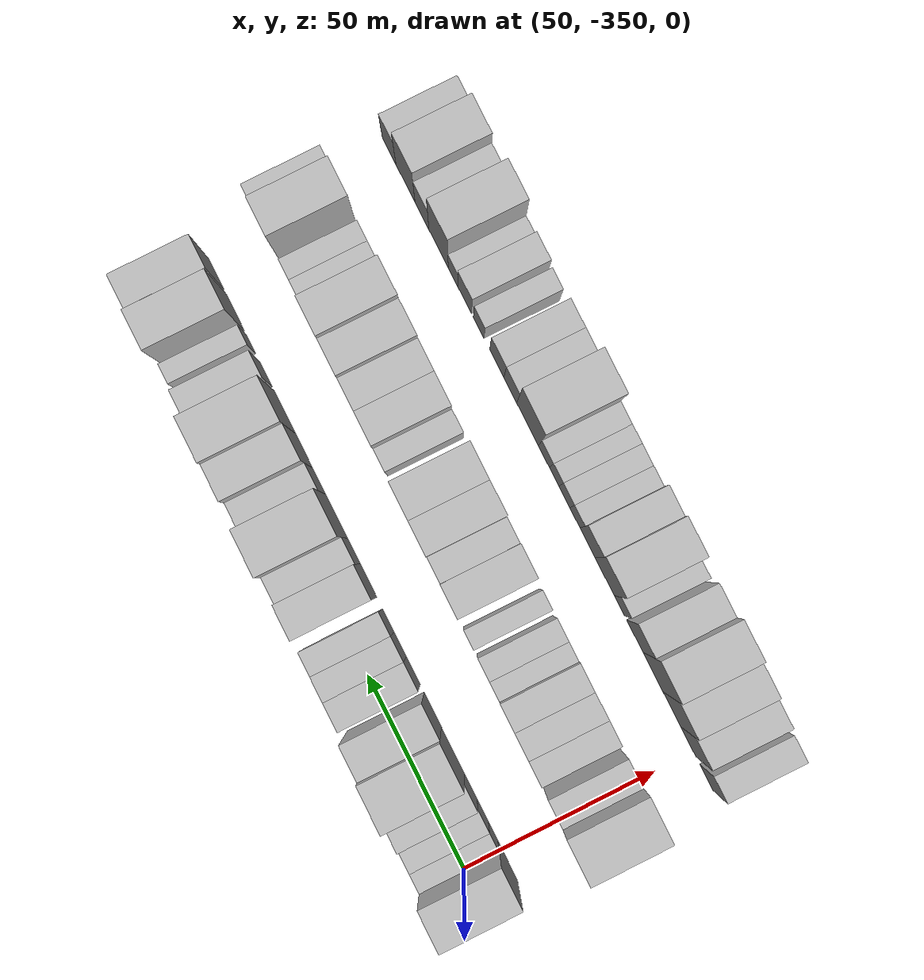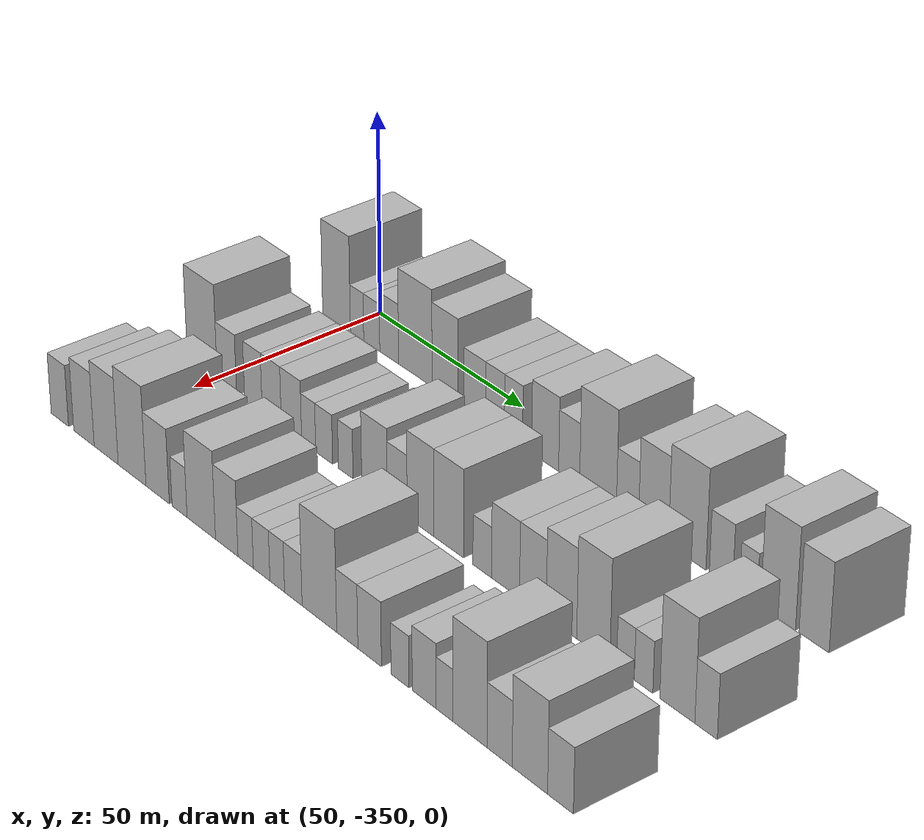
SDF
<sdf version="1.6">
 <world name="default">
  <model name="building_1">
   <static>1</static>
   <pose>50.0000 -352.8686 0 0.000000 0.000000 0.000000</pose>
   <link name="link">
    <pose>0 0 12.00 0 0 0</pose>
    <collision name="collision"><geometry><box><size>20.0000 10.2628 24.0000</size></box></geometry></collision>
    <visual name="visual">
     <cast_shadows>0</cast_shadows>
     <geometry><box><size>20.0000 10.2628 24.0000</size></box></geometry>
     <material>
      <script>
       <uri>model://HANNAS_wall/materials/scripts</uri>
       <uri>model://HANNAS_wall/materials/textures</uri>
       <name>vrc/HANNAS_wall</name>
      </script>
     </material>
    </visual>
   </link>
  </model>
  <model name="building_2">
   <static>1</static>
   <pose>50.0000 -345.3248 0 0.000000 0.000000 0.000000</pose>
   <link name="link">
    <pose>0 0 6.00 0 0 0</pose>
    <collision name="collision"><geometry><box><size>20.0000 4.8248 12.0000</size></box></geometry></collision>
    <visual name="visual">
     <cast_shadows>0</cast_shadows>
     <geometry><box><size>20.0000 4.8248 12.0000</size></box></geometry>
     <material>
      <script>
       <uri>model://HANNAS_wall/materials/scripts</uri>
       <uri>model://HANNAS_wall/materials/textures</uri>
       <name>vrc/HANNAS_wall</name>
      </script>
     </material>
    </visual>
   </link>
  </model>
  <model name="building_3">
   <static>1</static>
   <pose>50.0000 -339.9929 0 0.000000 0.000000 0.000000</pose>
   <link name="link">
    <pose>0 0 6.00 0 0 0</pose>
    <collision name="collision"><geometry><box><size>20.0000 5.8389 12.0000</size></box></geometry></collision>
    <visual name="visual">
     <cast_shadows>0</cast_shadows>
     <geometry><box><size>20.0000 5.8389 12.0000</size></box></geometry>
     <material>
      <script>
       <uri>model://HANNAS_wall/materials/scripts</uri>
       <uri>model://HANNAS_wall/materials/textures</uri>
       <name>vrc/HANNAS_wall</name>
      </script>
     </material>
    </visual>
   </link>
  </model>
  <model name="building_4">
   <static>1</static>
   <pose>50.0000 -333.7014 0 0.000000 0.000000 0.000000</pose>
   <link name="link">
    <pose>0 0 7.50 0 0 0</pose>
    <collision name="collision"><geometry><box><size>20.0000 6.7441 15.0000</size></box></geometry></collision>
    <visual name="visual">
     <cast_shadows>0</cast_shadows>
     <geometry><box><size>20.0000 6.7441 15.0000</size></box></geometry>
     <material>
      <script>
       <uri>model://HANNAS_wall/materials/scripts</uri>
       <uri>model://HANNAS_wall/materials/textures</uri>
       <name>vrc/HANNAS_wall</name>
      </script>
     </material>
    </visual>
   </link>
  </model>
  <model name="building_5">
   <static>1</static>
   <pose>50.0000 -324.4189 0 0.000000 0.000000 0.000000</pose>
   <link name="link">
    <pose>0 0 12.00 0 0 0</pose>
    <collision name="collision"><geometry><box><size>20.0000 11.8209 24.0000</size></box></geometry></collision>
    <visual name="visual">
     <cast_shadows>0</cast_shadows>
     <geometry><box><size>20.0000 11.8209 24.0000</size></box></geometry>
     <material>
      <script>
       <uri>model://HANNAS_wall/materials/scripts</uri>
       <uri>model://HANNAS_wall/materials/textures</uri>
       <name>vrc/HANNAS_wall</name>
      </script>
     </material>
    </visual>
   </link>
  </model>
  <model name="building_6">
   <static>1</static>
   <pose>50.0000 -314.0192 0 0.000000 0.000000 0.000000</pose>
   <link name="link">
    <pose>0 0 10.50 0 0 0</pose>
    <collision name="collision"><geometry><box><size>20.0000 8.9787 21.0000</size></box></geometry></collision>
    <visual name="visual">
     <cast_shadows>0</cast_shadows>
     <geometry><box><size>20.0000 8.9787 21.0000</size></box></geometry>
     <material>
      <script>
       <uri>model://HANNAS_wall/materials/scripts</uri>
       <uri>model://HANNAS_wall/materials/textures</uri>
       <name>vrc/HANNAS_wall</name>
      </script>
     </material>
    </visual>
   </link>
  </model>
  <model name="building_7">
   <static>1</static>
   <pose>50.0000 -303.8690 0 0.000000 0.000000 0.000000</pose>
   <link name="link">
    <pose>0 0 7.50 0 0 0</pose>
    <collision name="collision"><geometry><box><size>20.0000 7.3216 15.0000</size></box></geometry></collision>
    <visual name="visual">
     <cast_shadows>0</cast_shadows>
     <geometry><box><size>20.0000 7.3216 15.0000</size></box></geometry>
     <material>
      <script>
       <uri>model://HANNAS_wall/materials/scripts</uri>
       <uri>model://HANNAS_wall/materials/textures</uri>
       <name>vrc/HANNAS_wall</name>
      </script>
     </material>
    </visual>
   </link>
  </model>
  <model name="building_8">
   <static>1</static>
   <pose>50.0000 -297.0208 0 0.000000 0.000000 0.000000</pose>
   <link name="link">
    <pose>0 0 7.50 0 0 0</pose>
    <collision name="collision"><geometry><box><size>20.0000 6.3748 15.0000</size></box></geometry></collision>
    <visual name="visual">
     <cast_shadows>0</cast_shadows>
     <geometry><box><size>20.0000 6.3748 15.0000</size></box></geometry>
     <material>
      <script>
       <uri>model://HANNAS_wall/materials/scripts</uri>
       <uri>model://HANNAS_wall/materials/textures</uri>
       <name>vrc/HANNAS_wall</name>
      </script>
     </material>
    </visual>
   </link>
  </model>
  <model name="building_9">
   <static>1</static>
   <pose>50.0000 -290.8084 0 0.000000 0.000000 0.000000</pose>
   <link name="link">
    <pose>0 0 7.50 0 0 0</pose>
    <collision name="collision"><geometry><box><size>20.0000 6.0501 15.0000</size></box></geometry></collision>
    <visual name="visual">
     <cast_shadows>0</cast_shadows>
     <geometry><box><size>20.0000 6.0501 15.0000</size></box></geometry>
     <material>
      <script>
       <uri>model://HANNAS_wall/materials/scripts</uri>
       <uri>model://HANNAS_wall/materials/textures</uri>
       <name>vrc/HANNAS_wall</name>
      </script>
     </material>
    </visual>
   </link>
  </model>
  <model name="building_10">
   <static>1</static>
   <pose>50.0000 -280.3796 0 0.000000 0.000000 0.000000</pose>
   <link name="link">
    <pose>0 0 9.00 0 0 0</pose>
    <collision name="collision"><geometry><box><size>20.0000 8.8075 18.0000</size></box></geometry></collision>
    <visual name="visual">
     <cast_shadows>0</cast_shadows>
     <geometry><box><size>20.0000 8.8075 18.0000</size></box></geometry>
     <material>
      <script>
       <uri>model://HANNAS_wall/materials/scripts</uri>
       <uri>model://HANNAS_wall/materials/textures</uri>
       <name>vrc/HANNAS_wall</name>
      </script>
     </material>
    </visual>
   </link>
  </model>
  <model name="building_11">
   <static>1</static>
   <pose>50.0000 -272.6070 0 0.000000 0.000000 0.000000</pose>
   <link name="link">
    <pose>0 0 7.50 0 0 0</pose>
    <collision name="collision"><geometry><box><size>20.0000 6.7378 15.0000</size></box></geometry></collision>
    <visual name="visual">
     <cast_shadows>0</cast_shadows>
     <geometry><box><size>20.0000 6.7378 15.0000</size></box></geometry>
     <material>
      <script>
       <uri>model://HANNAS_wall/materials/scripts</uri>
       <uri>model://HANNAS_wall/materials/textures</uri>
       <name>vrc/HANNAS_wall</name>
      </script>
     </material>
    </visual>
   </link>
  </model>
  <model name="building_12">
   <static>1</static>
   <pose>50.0000 -263.4218 0 0.000000 0.000000 0.000000</pose>
   <link name="link">
    <pose>0 0 12.00 0 0 0</pose>
    <collision name="collision"><geometry><box><size>20.0000 11.6326 24.0000</size></box></geometry></collision>
    <visual name="visual">
     <cast_shadows>0</cast_shadows>
     <geometry><box><size>20.0000 11.6326 24.0000</size></box></geometry>
     <material>
      <script>
       <uri>model://HANNAS_wall/materials/scripts</uri>
       <uri>model://HANNAS_wall/materials/textures</uri>
       <name>vrc/HANNAS_wall</name>
      </script>
     </material>
    </visual>
   </link>
  </model>
  <model name="building_13">
   <static>1</static>
   <pose>50.0000 -254.1615 0 0.000000 0.000000 0.000000</pose>
   <link name="link">
    <pose>0 0 7.50 0 0 0</pose>
    <collision name="collision"><geometry><box><size>20.0000 6.8879 15.0000</size></box></geometry></collision>
    <visual name="visual">
     <cast_shadows>0</cast_shadows>
     <geometry><box><size>20.0000 6.8879 15.0000</size></box></geometry>
     <material>
      <script>
       <uri>model://HANNAS_wall/materials/scripts</uri>
       <uri>model://HANNAS_wall/materials/textures</uri>
       <name>vrc/HANNAS_wall</name>
      </script>
     </material>
    </visual>
   </link>
  </model>
  <model name="building_14">
   <static>1</static>
   <pose>50.0000 -246.1283 0 0.000000 0.000000 0.000000</pose>
   <link name="link">
    <pose>0 0 10.50 0 0 0</pose>
    <collision name="collision"><geometry><box><size>20.0000 9.1787 21.0000</size></box></geometry></collision>
    <visual name="visual">
     <cast_shadows>0</cast_shadows>
     <geometry><box><size>20.0000 9.1787 21.0000</size></box></geometry>
     <material>
      <script>
       <uri>model://HANNAS_wall/materials/scripts</uri>
       <uri>model://HANNAS_wall/materials/textures</uri>
       <name>vrc/HANNAS_wall</name>
      </script>
     </material>
    </visual>
   </link>
  </model>
  <model name="building_15">
   <static>1</static>
   <pose>50.0000 -235.8832 0 0.000000 0.000000 0.000000</pose>
   <link name="link">
    <pose>0 0 12.00 0 0 0</pose>
    <collision name="collision"><geometry><box><size>20.0000 11.3115 24.0000</size></box></geometry></collision>
    <visual name="visual">
     <cast_shadows>0</cast_shadows>
     <geometry><box><size>20.0000 11.3115 24.0000</size></box></geometry>
     <material>
      <script>
       <uri>model://HANNAS_wall/materials/scripts</uri>
       <uri>model://HANNAS_wall/materials/textures</uri>
       <name>vrc/HANNAS_wall</name>
      </script>
     </material>
    </visual>
   </link>
  </model>
  <model name="building_16">
   <static>1</static>
   <pose>50.0000 -225.7912 0 0.000000 0.000000 0.000000</pose>
   <link name="link">
    <pose>0 0 7.50 0 0 0</pose>
    <collision name="collision"><geometry><box><size>20.0000 6.8725 15.0000</size></box></geometry></collision>
    <visual name="visual">
     <cast_shadows>0</cast_shadows>
     <geometry><box><size>20.0000 6.8725 15.0000</size></box></geometry>
     <material>
      <script>
       <uri>model://HANNAS_wall/materials/scripts</uri>
       <uri>model://HANNAS_wall/materials/textures</uri>
       <name>vrc/HANNAS_wall</name>
      </script>
     </material>
    </visual>
   </link>
  </model>
  <model name="building_17">
   <static>1</static>
   <pose>50.0000 -217.7976 0 0.000000 0.000000 0.000000</pose>
   <link name="link">
    <pose>0 0 6.00 0 0 0</pose>
    <collision name="collision"><geometry><box><size>20.0000 5.1148 12.0000</size></box></geometry></collision>
    <visual name="visual">
     <cast_shadows>0</cast_shadows>
     <geometry><box><size>20.0000 5.1148 12.0000</size></box></geometry>
     <material>
      <script>
       <uri>model://HANNAS_wall/materials/scripts</uri>
       <uri>model://HANNAS_wall/materials/textures</uri>
       <name>vrc/HANNAS_wall</name>
      </script>
     </material>
    </visual>
   </link>
  </model>
  <model name="building_18">
   <static>1</static>
   <pose>50.0000 -209.2322 0 0.000000 0.000000 0.000000</pose>
   <link name="link">
    <pose>0 0 12.00 0 0 0</pose>
    <collision name="collision"><geometry><box><size>20.0000 10.0159 24.0000</size></box></geometry></collision>
    <visual name="visual">
     <cast_shadows>0</cast_shadows>
     <geometry><box><size>20.0000 10.0159 24.0000</size></box></geometry>
     <material>
      <script>
       <uri>model://HANNAS_wall/materials/scripts</uri>
       <uri>model://HANNAS_wall/materials/textures</uri>
       <name>vrc/HANNAS_wall</name>
      </script>
     </material>
    </visual>
   </link>
  </model>
  <model name="building_19">
   <static>1</static>
   <pose>50.0000 -199.0044 0 0.000000 0.000000 0.000000</pose>
   <link name="link">
    <pose>0 0 10.50 0 0 0</pose>
    <collision name="collision"><geometry><box><size>20.0000 8.4398 21.0000</size></box></geometry></collision>
    <visual name="visual">
     <cast_shadows>0</cast_shadows>
     <geometry><box><size>20.0000 8.4398 21.0000</size></box></geometry>
     <material>
      <script>
       <uri>model://HANNAS_wall/materials/scripts</uri>
       <uri>model://HANNAS_wall/materials/textures</uri>
       <name>vrc/HANNAS_wall</name>
      </script>
     </material>
    </visual>
   </link>
  </model>
  <model name="building_82">
   <static>1</static>
   <pose>85.0000 -354.3574 0 0.000000 0.000000 0.000000</pose>
   <link name="link">
    <pose>0 0 12.00 0 0 0</pose>
    <collision name="collision"><geometry><box><size>20.0000 11.2853 24.0000</size></box></geometry></collision>
    <visual name="visual">
     <cast_shadows>0</cast_shadows>
     <geometry><box><size>20.0000 11.2853 24.0000</size></box></geometry>
     <material>
      <script>
       <uri>model://HANNAS_wall/materials/scripts</uri>
       <uri>model://HANNAS_wall/materials/textures</uri>
       <name>vrc/HANNAS_wall</name>
      </script>
     </material>
    </visual>
   </link>
  </model>
  <model name="building_83">
   <static>1</static>
   <pose>85.0000 -345.1376 0 0.000000 0.000000 0.000000</pose>
   <link name="link">
    <pose>0 0 7.50 0 0 0</pose>
    <collision name="collision"><geometry><box><size>20.0000 7.1543 15.0000</size></box></geometry></collision>
    <visual name="visual">
     <cast_shadows>0</cast_shadows>
     <geometry><box><size>20.0000 7.1543 15.0000</size></box></geometry>
     <material>
      <script>
       <uri>model://HANNAS_wall/materials/scripts</uri>
       <uri>model://HANNAS_wall/materials/textures</uri>
       <name>vrc/HANNAS_wall</name>
      </script>
     </material>
    </visual>
   </link>
  </model>
  <model name="building_84">
   <static>1</static>
   <pose>85.0000 -335.3608 0 0.000000 0.000000 0.000000</pose>
   <link name="link">
    <pose>0 0 7.50 0 0 0</pose>
    <collision name="collision"><geometry><box><size>20.0000 6.3992 15.0000</size></box></geometry></collision>
    <visual name="visual">
     <cast_shadows>0</cast_shadows>
     <geometry><box><size>20.0000 6.3992 15.0000</size></box></geometry>
     <material>
      <script>
       <uri>model://HANNAS_wall/materials/scripts</uri>
       <uri>model://HANNAS_wall/materials/textures</uri>
       <name>vrc/HANNAS_wall</name>
      </script>
     </material>
    </visual>
   </link>
  </model>
  <model name="building_85">
   <static>1</static>
   <pose>85.0000 -328.6858 0 0.000000 0.000000 0.000000</pose>
   <link name="link">
    <pose>0 0 7.50 0 0 0</pose>
    <collision name="collision"><geometry><box><size>20.0000 6.9506 15.0000</size></box></geometry></collision>
    <visual name="visual">
     <cast_shadows>0</cast_shadows>
     <geometry><box><size>20.0000 6.9506 15.0000</size></box></geometry>
     <material>
      <script>
       <uri>model://HANNAS_wall/materials/scripts</uri>
       <uri>model://HANNAS_wall/materials/textures</uri>
       <name>vrc/HANNAS_wall</name>
      </script>
     </material>
    </visual>
   </link>
  </model>
  <model name="building_86">
   <static>1</static>
   <pose>85.0000 -321.5972 0 0.000000 0.000000 0.000000</pose>
   <link name="link">
    <pose>0 0 7.50 0 0 0</pose>
    <collision name="collision"><geometry><box><size>20.0000 7.2266 15.0000</size></box></geometry></collision>
    <visual name="visual">
     <cast_shadows>0</cast_shadows>
     <geometry><box><size>20.0000 7.2266 15.0000</size></box></geometry>
     <material>
      <script>
       <uri>model://HANNAS_wall/materials/scripts</uri>
       <uri>model://HANNAS_wall/materials/textures</uri>
       <name>vrc/HANNAS_wall</name>
      </script>
     </material>
    </visual>
   </link>
  </model>
  <model name="building_87">
   <static>1</static>
   <pose>85.0000 -315.5026 0 0.000000 0.000000 0.000000</pose>
   <link name="link">
    <pose>0 0 6.00 0 0 0</pose>
    <collision name="collision"><geometry><box><size>20.0000 4.9626 12.0000</size></box></geometry></collision>
    <visual name="visual">
     <cast_shadows>0</cast_shadows>
     <geometry><box><size>20.0000 4.9626 12.0000</size></box></geometry>
     <material>
      <script>
       <uri>model://HANNAS_wall/materials/scripts</uri>
       <uri>model://HANNAS_wall/materials/textures</uri>
       <name>vrc/HANNAS_wall</name>
      </script>
     </material>
    </visual>
   </link>
  </model>
  <model name="building_88">
   <static>1</static>
   <pose>85.0000 -310.0579 0 0.000000 0.000000 0.000000</pose>
   <link name="link">
    <pose>0 0 6.00 0 0 0</pose>
    <collision name="collision"><geometry><box><size>20.0000 5.9268 12.0000</size></box></geometry></collision>
    <visual name="visual">
     <cast_shadows>0</cast_shadows>
     <geometry><box><size>20.0000 5.9268 12.0000</size></box></geometry>
     <material>
      <script>
       <uri>model://HANNAS_wall/materials/scripts</uri>
       <uri>model://HANNAS_wall/materials/textures</uri>
       <name>vrc/HANNAS_wall</name>
      </script>
     </material>
    </visual>
   </link>
  </model>
  <model name="building_89">
   <static>1</static>
   <pose>85.0000 -302.5815 0 0.000000 0.000000 0.000000</pose>
   <link name="link">
    <pose>0 0 6.00 0 0 0</pose>
    <collision name="collision"><geometry><box><size>20.0000 5.0261 12.0000</size></box></geometry></collision>
    <visual name="visual">
     <cast_shadows>0</cast_shadows>
     <geometry><box><size>20.0000 5.0261 12.0000</size></box></geometry>
     <material>
      <script>
       <uri>model://HANNAS_wall/materials/scripts</uri>
       <uri>model://HANNAS_wall/materials/textures</uri>
       <name>vrc/HANNAS_wall</name>
      </script>
     </material>
    </visual>
   </link>
  </model>
  <model name="building_90">
   <static>1</static>
   <pose>85.0000 -292.7428 0 0.000000 0.000000 0.000000</pose>
   <link name="link">
    <pose>0 0 9.00 0 0 0</pose>
    <collision name="collision"><geometry><box><size>20.0000 8.6512 18.0000</size></box></geometry></collision>
    <visual name="visual">
     <cast_shadows>0</cast_shadows>
     <geometry><box><size>20.0000 8.6512 18.0000</size></box></geometry>
     <material>
      <script>
       <uri>model://HANNAS_wall/materials/scripts</uri>
       <uri>model://HANNAS_wall/materials/textures</uri>
       <name>vrc/HANNAS_wall</name>
      </script>
     </material>
    </visual>
   </link>
  </model>
  <model name="building_91">
   <static>1</static>
   <pose>85.0000 -285.0818 0 0.000000 0.000000 0.000000</pose>
   <link name="link">
    <pose>0 0 7.50 0 0 0</pose>
    <collision name="collision"><geometry><box><size>20.0000 6.6709 15.0000</size></box></geometry></collision>
    <visual name="visual">
     <cast_shadows>0</cast_shadows>
     <geometry><box><size>20.0000 6.6709 15.0000</size></box></geometry>
     <material>
      <script>
       <uri>model://HANNAS_wall/materials/scripts</uri>
       <uri>model://HANNAS_wall/materials/textures</uri>
       <name>vrc/HANNAS_wall</name>
      </script>
     </material>
    </visual>
   </link>
  </model>
  <model name="building_92">
   <static>1</static>
   <pose>85.0000 -277.3426 0 0.000000 0.000000 0.000000</pose>
   <link name="link">
    <pose>0 0 10.50 0 0 0</pose>
    <collision name="collision"><geometry><box><size>20.0000 8.8077 21.0000</size></box></geometry></collision>
    <visual name="visual">
     <cast_shadows>0</cast_shadows>
     <geometry><box><size>20.0000 8.8077 21.0000</size></box></geometry>
     <material>
      <script>
       <uri>model://HANNAS_wall/materials/scripts</uri>
       <uri>model://HANNAS_wall/materials/textures</uri>
       <name>vrc/HANNAS_wall</name>
      </script>
     </material>
    </visual>
   </link>
  </model>
  <model name="building_93">
   <static>1</static>
   <pose>85.0000 -268.1511 0 0.000000 0.000000 0.000000</pose>
   <link name="link">
    <pose>0 0 10.50 0 0 0</pose>
    <collision name="collision"><geometry><box><size>20.0000 9.5753 21.0000</size></box></geometry></collision>
    <visual name="visual">
     <cast_shadows>0</cast_shadows>
     <geometry><box><size>20.0000 9.5753 21.0000</size></box></geometry>
     <material>
      <script>
       <uri>model://HANNAS_wall/materials/scripts</uri>
       <uri>model://HANNAS_wall/materials/textures</uri>
       <name>vrc/HANNAS_wall</name>
      </script>
     </material>
    </visual>
   </link>
  </model>
  <model name="building_94">
   <static>1</static>
   <pose>85.0000 -257.3862 0 0.000000 0.000000 0.000000</pose>
   <link name="link">
    <pose>0 0 6.00 0 0 0</pose>
    <collision name="collision"><geometry><box><size>20.0000 5.9543 12.0000</size></box></geometry></collision>
    <visual name="visual">
     <cast_shadows>0</cast_shadows>
     <geometry><box><size>20.0000 5.9543 12.0000</size></box></geometry>
     <material>
      <script>
       <uri>model://HANNAS_wall/materials/scripts</uri>
       <uri>model://HANNAS_wall/materials/textures</uri>
       <name>vrc/HANNAS_wall</name>
      </script>
     </material>
    </visual>
   </link>
  </model>
  <model name="building_95">
   <static>1</static>
   <pose>85.0000 -250.0476 0 0.000000 0.000000 0.000000</pose>
   <link name="link">
    <pose>0 0 9.00 0 0 0</pose>
    <collision name="collision"><geometry><box><size>20.0000 8.7229 18.0000</size></box></geometry></collision>
    <visual name="visual">
     <cast_shadows>0</cast_shadows>
     <geometry><box><size>20.0000 8.7229 18.0000</size></box></geometry>
     <material>
      <script>
       <uri>model://HANNAS_wall/materials/scripts</uri>
       <uri>model://HANNAS_wall/materials/textures</uri>
       <name>vrc/HANNAS_wall</name>
      </script>
     </material>
    </visual>
   </link>
  </model>
  <model name="building_96">
   <static>1</static>
   <pose>85.0000 -241.5769 0 0.000000 0.000000 0.000000</pose>
   <link name="link">
    <pose>0 0 9.00 0 0 0</pose>
    <collision name="collision"><geometry><box><size>20.0000 8.2185 18.0000</size></box></geometry></collision>
    <visual name="visual">
     <cast_shadows>0</cast_shadows>
     <geometry><box><size>20.0000 8.2185 18.0000</size></box></geometry>
     <material>
      <script>
       <uri>model://HANNAS_wall/materials/scripts</uri>
       <uri>model://HANNAS_wall/materials/textures</uri>
       <name>vrc/HANNAS_wall</name>
      </script>
     </material>
    </visual>
   </link>
  </model>
  <model name="building_97">
   <static>1</static>
   <pose>85.0000 -232.8601 0 0.000000 0.000000 0.000000</pose>
   <link name="link">
    <pose>0 0 10.50 0 0 0</pose>
    <collision name="collision"><geometry><box><size>20.0000 9.2152 21.0000</size></box></geometry></collision>
    <visual name="visual">
     <cast_shadows>0</cast_shadows>
     <geometry><box><size>20.0000 9.2152 21.0000</size></box></geometry>
     <material>
      <script>
       <uri>model://HANNAS_wall/materials/scripts</uri>
       <uri>model://HANNAS_wall/materials/textures</uri>
       <name>vrc/HANNAS_wall</name>
      </script>
     </material>
    </visual>
   </link>
  </model>
  <model name="building_98">
   <static>1</static>
   <pose>85.0000 -223.3158 0 0.000000 0.000000 0.000000</pose>
   <link name="link">
    <pose>0 0 12.00 0 0 0</pose>
    <collision name="collision"><geometry><box><size>20.0000 9.8735 24.0000</size></box></geometry></collision>
    <visual name="visual">
     <cast_shadows>0</cast_shadows>
     <geometry><box><size>20.0000 9.8735 24.0000</size></box></geometry>
     <material>
      <script>
       <uri>model://HANNAS_wall/materials/scripts</uri>
       <uri>model://HANNAS_wall/materials/textures</uri>
       <name>vrc/HANNAS_wall</name>
      </script>
     </material>
    </visual>
   </link>
  </model>
  <model name="building_99">
   <static>1</static>
   <pose>85.0000 -213.8111 0 0.000000 0.000000 0.000000</pose>
   <link name="link">
    <pose>0 0 6.00 0 0 0</pose>
    <collision name="collision"><geometry><box><size>20.0000 5.1359 12.0000</size></box></geometry></collision>
    <visual name="visual">
     <cast_shadows>0</cast_shadows>
     <geometry><box><size>20.0000 5.1359 12.0000</size></box></geometry>
     <material>
      <script>
       <uri>model://HANNAS_wall/materials/scripts</uri>
       <uri>model://HANNAS_wall/materials/textures</uri>
       <name>vrc/HANNAS_wall</name>
      </script>
     </material>
    </visual>
   </link>
  </model>
  <model name="building_100">
   <static>1</static>
   <pose>85.0000 -208.5606 0 0.000000 0.000000 0.000000</pose>
   <link name="link">
    <pose>0 0 6.00 0 0 0</pose>
    <collision name="collision"><geometry><box><size>20.0000 5.3651 12.0000</size></box></geometry></collision>
    <visual name="visual">
     <cast_shadows>0</cast_shadows>
     <geometry><box><size>20.0000 5.3651 12.0000</size></box></geometry>
     <material>
      <script>
       <uri>model://HANNAS_wall/materials/scripts</uri>
       <uri>model://HANNAS_wall/materials/textures</uri>
       <name>vrc/HANNAS_wall</name>
      </script>
     </material>
    </visual>
   </link>
  </model>
  <model name="building_101">
   <static>1</static>
   <pose>85.0000 -198.9123 0 0.000000 0.000000 0.000000</pose>
   <link name="link">
    <pose>0 0 12.00 0 0 0</pose>
    <collision name="collision"><geometry><box><size>20.0000 9.9314 24.0000</size></box></geometry></collision>
    <visual name="visual">
     <cast_shadows>0</cast_shadows>
     <geometry><box><size>20.0000 9.9314 24.0000</size></box></geometry>
     <material>
      <script>
       <uri>model://HANNAS_wall/materials/scripts</uri>
       <uri>model://HANNAS_wall/materials/textures</uri>
       <name>vrc/HANNAS_wall</name>
      </script>
     </material>
    </visual>
   </link>
  </model>
  <model name="building_102">
   <static>1</static>
   <pose>85.0000 -190.8094 0 0.000000 0.000000 0.000000</pose>
   <link name="link">
    <pose>0 0 7.50 0 0 0</pose>
    <collision name="collision"><geometry><box><size>20.0000 6.2743 15.0000</size></box></geometry></collision>
    <visual name="visual">
     <cast_shadows>0</cast_shadows>
     <geometry><box><size>20.0000 6.2743 15.0000</size></box></geometry>
     <material>
      <script>
       <uri>model://HANNAS_wall/materials/scripts</uri>
       <uri>model://HANNAS_wall/materials/textures</uri>
       <name>vrc/HANNAS_wall</name>
      </script>
     </material>
    </visual>
   </link>
  </model>
  <model name="building_167">
   <static>1</static>
   <pose>120.0000 -356.6541 0 0.000000 0.000000 0.000000</pose>
   <link name="link">
    <pose>0 0 7.50 0 0 0</pose>
    <collision name="collision"><geometry><box><size>20.0000 6.6918 15.0000</size></box></geometry></collision>
    <visual name="visual">
     <cast_shadows>0</cast_shadows>
     <geometry><box><size>20.0000 6.6918 15.0000</size></box></geometry>
     <material>
      <script>
       <uri>model://HANNAS_wall/materials/scripts</uri>
       <uri>model://HANNAS_wall/materials/textures</uri>
       <name>vrc/HANNAS_wall</name>
      </script>
     </material>
    </visual>
   </link>
  </model>
  <model name="building_168">
   <static>1</static>
   <pose>120.0000 -347.4051 0 0.000000 0.000000 0.000000</pose>
   <link name="link">
    <pose>0 0 9.00 0 0 0</pose>
    <collision name="collision"><geometry><box><size>20.0000 7.8062 18.0000</size></box></geometry></collision>
    <visual name="visual">
     <cast_shadows>0</cast_shadows>
     <geometry><box><size>20.0000 7.8062 18.0000</size></box></geometry>
     <material>
      <script>
       <uri>model://HANNAS_wall/materials/scripts</uri>
       <uri>model://HANNAS_wall/materials/textures</uri>
       <name>vrc/HANNAS_wall</name>
      </script>
     </material>
    </visual>
   </link>
  </model>
  <model name="building_169">
   <static>1</static>
   <pose>120.0000 -338.9887 0 0.000000 0.000000 0.000000</pose>
   <link name="link">
    <pose>0 0 10.50 0 0 0</pose>
    <collision name="collision"><geometry><box><size>20.0000 9.0265 21.0000</size></box></geometry></collision>
    <visual name="visual">
     <cast_shadows>0</cast_shadows>
     <geometry><box><size>20.0000 9.0265 21.0000</size></box></geometry>
     <material>
      <script>
       <uri>model://HANNAS_wall/materials/scripts</uri>
       <uri>model://HANNAS_wall/materials/textures</uri>
       <name>vrc/HANNAS_wall</name>
      </script>
     </material>
    </visual>
   </link>
  </model>
  <model name="building_170">
   <static>1</static>
   <pose>120.0000 -329.3336 0 0.000000 0.000000 0.000000</pose>
   <link name="link">
    <pose>0 0 12.00 0 0 0</pose>
    <collision name="collision"><geometry><box><size>20.0000 10.2838 24.0000</size></box></geometry></collision>
    <visual name="visual">
     <cast_shadows>0</cast_shadows>
     <geometry><box><size>20.0000 10.2838 24.0000</size></box></geometry>
     <material>
      <script>
       <uri>model://HANNAS_wall/materials/scripts</uri>
       <uri>model://HANNAS_wall/materials/textures</uri>
       <name>vrc/HANNAS_wall</name>
      </script>
     </material>
    </visual>
   </link>
  </model>
  <model name="building_171">
   <static>1</static>
   <pose>120.0000 -319.9549 0 0.000000 0.000000 0.000000</pose>
   <link name="link">
    <pose>0 0 9.00 0 0 0</pose>
    <collision name="collision"><geometry><box><size>20.0000 8.4737 18.0000</size></box></geometry></collision>
    <visual name="visual">
     <cast_shadows>0</cast_shadows>
     <geometry><box><size>20.0000 8.4737 18.0000</size></box></geometry>
     <material>
      <script>
       <uri>model://HANNAS_wall/materials/scripts</uri>
       <uri>model://HANNAS_wall/materials/textures</uri>
       <name>vrc/HANNAS_wall</name>
      </script>
     </material>
    </visual>
   </link>
  </model>
  <model name="building_172">
   <static>1</static>
   <pose>120.0000 -312.0448 0 0.000000 0.000000 0.000000</pose>
   <link name="link">
    <pose>0 0 6.00 0 0 0</pose>
    <collision name="collision"><geometry><box><size>20.0000 5.3464 12.0000</size></box></geometry></collision>
    <visual name="visual">
     <cast_shadows>0</cast_shadows>
     <geometry><box><size>20.0000 5.3464 12.0000</size></box></geometry>
     <material>
      <script>
       <uri>model://HANNAS_wall/materials/scripts</uri>
       <uri>model://HANNAS_wall/materials/textures</uri>
       <name>vrc/HANNAS_wall</name>
      </script>
     </material>
    </visual>
   </link>
  </model>
  <model name="building_173">
   <static>1</static>
   <pose>120.0000 -304.3544 0 0.000000 0.000000 0.000000</pose>
   <link name="link">
    <pose>0 0 10.50 0 0 0</pose>
    <collision name="collision"><geometry><box><size>20.0000 10.0344 21.0000</size></box></geometry></collision>
    <visual name="visual">
     <cast_shadows>0</cast_shadows>
     <geometry><box><size>20.0000 10.0344 21.0000</size></box></geometry>
     <material>
      <script>
       <uri>model://HANNAS_wall/materials/scripts</uri>
       <uri>model://HANNAS_wall/materials/textures</uri>
       <name>vrc/HANNAS_wall</name>
      </script>
     </material>
    </visual>
   </link>
  </model>
  <model name="building_174">
   <static>1</static>
   <pose>120.0000 -295.4369 0 0.000000 0.000000 0.000000</pose>
   <link name="link">
    <pose>0 0 9.00 0 0 0</pose>
    <collision name="collision"><geometry><box><size>20.0000 7.8007 18.0000</size></box></geometry></collision>
    <visual name="visual">
     <cast_shadows>0</cast_shadows>
     <geometry><box><size>20.0000 7.8007 18.0000</size></box></geometry>
     <material>
      <script>
       <uri>model://HANNAS_wall/materials/scripts</uri>
       <uri>model://HANNAS_wall/materials/textures</uri>
       <name>vrc/HANNAS_wall</name>
      </script>
     </material>
    </visual>
   </link>
  </model>
  <model name="building_175">
   <static>1</static>
   <pose>120.0000 -288.8963 0 0.000000 0.000000 0.000000</pose>
   <link name="link">
    <pose>0 0 6.00 0 0 0</pose>
    <collision name="collision"><geometry><box><size>20.0000 5.2804 12.0000</size></box></geometry></collision>
    <visual name="visual">
     <cast_shadows>0</cast_shadows>
     <geometry><box><size>20.0000 5.2804 12.0000</size></box></geometry>
     <material>
      <script>
       <uri>model://HANNAS_wall/materials/scripts</uri>
       <uri>model://HANNAS_wall/materials/textures</uri>
       <name>vrc/HANNAS_wall</name>
      </script>
     </material>
    </visual>
   </link>
  </model>
  <model name="building_176">
   <static>1</static>
   <pose>120.0000 -283.4449 0 0.000000 0.000000 0.000000</pose>
   <link name="link">
    <pose>0 0 6.00 0 0 0</pose>
    <collision name="collision"><geometry><box><size>20.0000 5.6225 12.0000</size></box></geometry></collision>
    <visual name="visual">
     <cast_shadows>0</cast_shadows>
     <geometry><box><size>20.0000 5.6225 12.0000</size></box></geometry>
     <material>
      <script>
       <uri>model://HANNAS_wall/materials/scripts</uri>
       <uri>model://HANNAS_wall/materials/textures</uri>
       <name>vrc/HANNAS_wall</name>
      </script>
     </material>
    </visual>
   </link>
  </model>
  <model name="building_177">
   <static>1</static>
   <pose>120.0000 -278.1819 0 0.000000 0.000000 0.000000</pose>
   <link name="link">
    <pose>0 0 6.00 0 0 0</pose>
    <collision name="collision"><geometry><box><size>20.0000 4.9033 12.0000</size></box></geometry></collision>
    <visual name="visual">
     <cast_shadows>0</cast_shadows>
     <geometry><box><size>20.0000 4.9033 12.0000</size></box></geometry>
     <material>
      <script>
       <uri>model://HANNAS_wall/materials/scripts</uri>
       <uri>model://HANNAS_wall/materials/textures</uri>
       <name>vrc/HANNAS_wall</name>
      </script>
     </material>
    </visual>
   </link>
  </model>
  <model name="building_178">
   <static>1</static>
   <pose>120.0000 -272.8156 0 0.000000 0.000000 0.000000</pose>
   <link name="link">
    <pose>0 0 6.00 0 0 0</pose>
    <collision name="collision"><geometry><box><size>20.0000 5.8294 12.0000</size></box></geometry></collision>
    <visual name="visual">
     <cast_shadows>0</cast_shadows>
     <geometry><box><size>20.0000 5.8294 12.0000</size></box></geometry>
     <material>
      <script>
       <uri>model://HANNAS_wall/materials/scripts</uri>
       <uri>model://HANNAS_wall/materials/textures</uri>
       <name>vrc/HANNAS_wall</name>
      </script>
     </material>
    </visual>
   </link>
  </model>
  <model name="building_179">
   <static>1</static>
   <pose>120.0000 -264.2283 0 0.000000 0.000000 0.000000</pose>
   <link name="link">
    <pose>0 0 12.00 0 0 0</pose>
    <collision name="collision"><geometry><box><size>20.0000 11.3452 24.0000</size></box></geometry></collision>
    <visual name="visual">
     <cast_shadows>0</cast_shadows>
     <geometry><box><size>20.0000 11.3452 24.0000</size></box></geometry>
     <material>
      <script>
       <uri>model://HANNAS_wall/materials/scripts</uri>
       <uri>model://HANNAS_wall/materials/textures</uri>
       <name>vrc/HANNAS_wall</name>
      </script>
     </material>
    </visual>
   </link>
  </model>
  <model name="building_180">
   <static>1</static>
   <pose>120.0000 -255.1642 0 0.000000 0.000000 0.000000</pose>
   <link name="link">
    <pose>0 0 7.50 0 0 0</pose>
    <collision name="collision"><geometry><box><size>20.0000 6.7829 15.0000</size></box></geometry></collision>
    <visual name="visual">
     <cast_shadows>0</cast_shadows>
     <geometry><box><size>20.0000 6.7829 15.0000</size></box></geometry>
     <material>
      <script>
       <uri>model://HANNAS_wall/materials/scripts</uri>
       <uri>model://HANNAS_wall/materials/textures</uri>
       <name>vrc/HANNAS_wall</name>
      </script>
     </material>
    </visual>
   </link>
  </model>
  <model name="building_181">
   <static>1</static>
   <pose>120.0000 -248.0360 0 0.000000 0.000000 0.000000</pose>
   <link name="link">
    <pose>0 0 7.50 0 0 0</pose>
    <collision name="collision"><geometry><box><size>20.0000 7.4734 15.0000</size></box></geometry></collision>
    <visual name="visual">
     <cast_shadows>0</cast_shadows>
     <geometry><box><size>20.0000 7.4734 15.0000</size></box></geometry>
     <material>
      <script>
       <uri>model://HANNAS_wall/materials/scripts</uri>
       <uri>model://HANNAS_wall/materials/textures</uri>
       <name>vrc/HANNAS_wall</name>
      </script>
     </material>
    </visual>
   </link>
  </model>
  <model name="building_182">
   <static>1</static>
   <pose>120.0000 -238.4927 0 0.000000 0.000000 0.000000</pose>
   <link name="link">
    <pose>0 0 6.00 0 0 0</pose>
    <collision name="collision"><geometry><box><size>20.0000 5.6132 12.0000</size></box></geometry></collision>
    <visual name="visual">
     <cast_shadows>0</cast_shadows>
     <geometry><box><size>20.0000 5.6132 12.0000</size></box></geometry>
     <material>
      <script>
       <uri>model://HANNAS_wall/materials/scripts</uri>
       <uri>model://HANNAS_wall/materials/textures</uri>
       <name>vrc/HANNAS_wall</name>
      </script>
     </material>
    </visual>
   </link>
  </model>
  <model name="building_183">
   <static>1</static>
   <pose>120.0000 -231.0179 0 0.000000 0.000000 0.000000</pose>
   <link name="link">
    <pose>0 0 7.50 0 0 0</pose>
    <collision name="collision"><geometry><box><size>20.0000 7.3363 15.0000</size></box></geometry></collision>
    <visual name="visual">
     <cast_shadows>0</cast_shadows>
     <geometry><box><size>20.0000 7.3363 15.0000</size></box></geometry>
     <material>
      <script>
       <uri>model://HANNAS_wall/materials/scripts</uri>
       <uri>model://HANNAS_wall/materials/textures</uri>
       <name>vrc/HANNAS_wall</name>
      </script>
     </material>
    </visual>
   </link>
  </model>
  <model name="building_184">
   <static>1</static>
   <pose>120.0000 -224.8558 0 0.000000 0.000000 0.000000</pose>
   <link name="link">
    <pose>0 0 6.00 0 0 0</pose>
    <collision name="collision"><geometry><box><size>20.0000 4.9879 12.0000</size></box></geometry></collision>
    <visual name="visual">
     <cast_shadows>0</cast_shadows>
     <geometry><box><size>20.0000 4.9879 12.0000</size></box></geometry>
     <material>
      <script>
       <uri>model://HANNAS_wall/materials/scripts</uri>
       <uri>model://HANNAS_wall/materials/textures</uri>
       <name>vrc/HANNAS_wall</name>
      </script>
     </material>
    </visual>
   </link>
  </model>
  <model name="building_185">
   <static>1</static>
   <pose>120.0000 -217.2404 0 0.000000 0.000000 0.000000</pose>
   <link name="link">
    <pose>0 0 12.00 0 0 0</pose>
    <collision name="collision"><geometry><box><size>20.0000 10.2428 24.0000</size></box></geometry></collision>
    <visual name="visual">
     <cast_shadows>0</cast_shadows>
     <geometry><box><size>20.0000 10.2428 24.0000</size></box></geometry>
     <material>
      <script>
       <uri>model://HANNAS_wall/materials/scripts</uri>
       <uri>model://HANNAS_wall/materials/textures</uri>
       <name>vrc/HANNAS_wall</name>
      </script>
     </material>
    </visual>
   </link>
  </model>
  <model name="building_186">
   <static>1</static>
   <pose>120.0000 -208.4225 0 0.000000 0.000000 0.000000</pose>
   <link name="link">
    <pose>0 0 7.50 0 0 0</pose>
    <collision name="collision"><geometry><box><size>20.0000 7.3930 15.0000</size></box></geometry></collision>
    <visual name="visual">
     <cast_shadows>0</cast_shadows>
     <geometry><box><size>20.0000 7.3930 15.0000</size></box></geometry>
     <material>
      <script>
       <uri>model://HANNAS_wall/materials/scripts</uri>
       <uri>model://HANNAS_wall/materials/textures</uri>
       <name>vrc/HANNAS_wall</name>
      </script>
     </material>
    </visual>
   </link>
  </model>
  <model name="building_187">
   <static>1</static>
   <pose>120.0000 -199.6432 0 0.000000 0.000000 0.000000</pose>
   <link name="link">
    <pose>0 0 10.50 0 0 0</pose>
    <collision name="collision"><geometry><box><size>20.0000 10.1655 21.0000</size></box></geometry></collision>
    <visual name="visual">
     <cast_shadows>0</cast_shadows>
     <geometry><box><size>20.0000 10.1655 21.0000</size></box></geometry>
     <material>
      <script>
       <uri>model://HANNAS_wall/materials/scripts</uri>
       <uri>model://HANNAS_wall/materials/textures</uri>
       <name>vrc/HANNAS_wall</name>
      </script>
     </material>
    </visual>
   </link>
  </model>
  <model name="building_188">
   <static>1</static>
   <pose>120.0000 -190.9101 0 0.000000 0.000000 0.000000</pose>
   <link name="link">
    <pose>0 0 7.50 0 0 0</pose>
    <collision name="collision"><geometry><box><size>20.0000 7.3007 15.0000</size></box></geometry></collision>
    <visual name="visual">
     <cast_shadows>0</cast_shadows>
     <geometry><box><size>20.0000 7.3007 15.0000</size></box></geometry>
     <material>
      <script>
       <uri>model://HANNAS_wall/materials/scripts</uri>
       <uri>model://HANNAS_wall/materials/textures</uri>
       <name>vrc/HANNAS_wall</name>
      </script>
     </material>
    </visual>
   </link>
  </model>
 </world>
</sdf>
